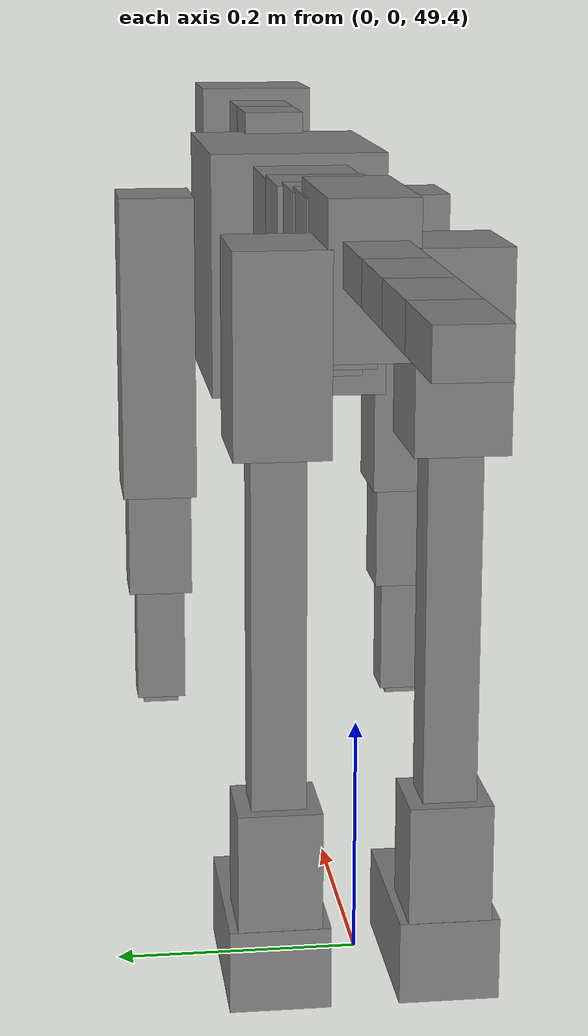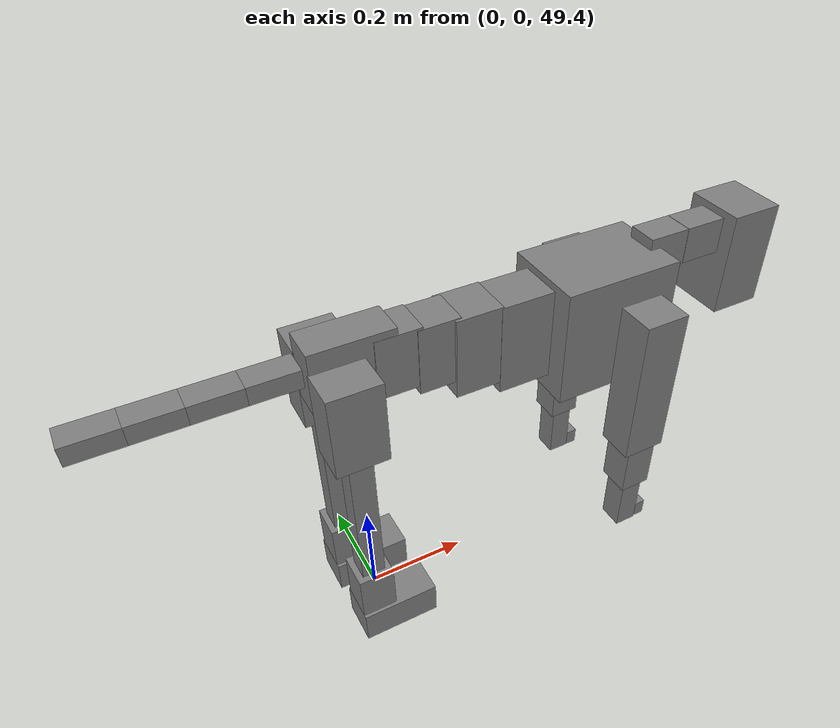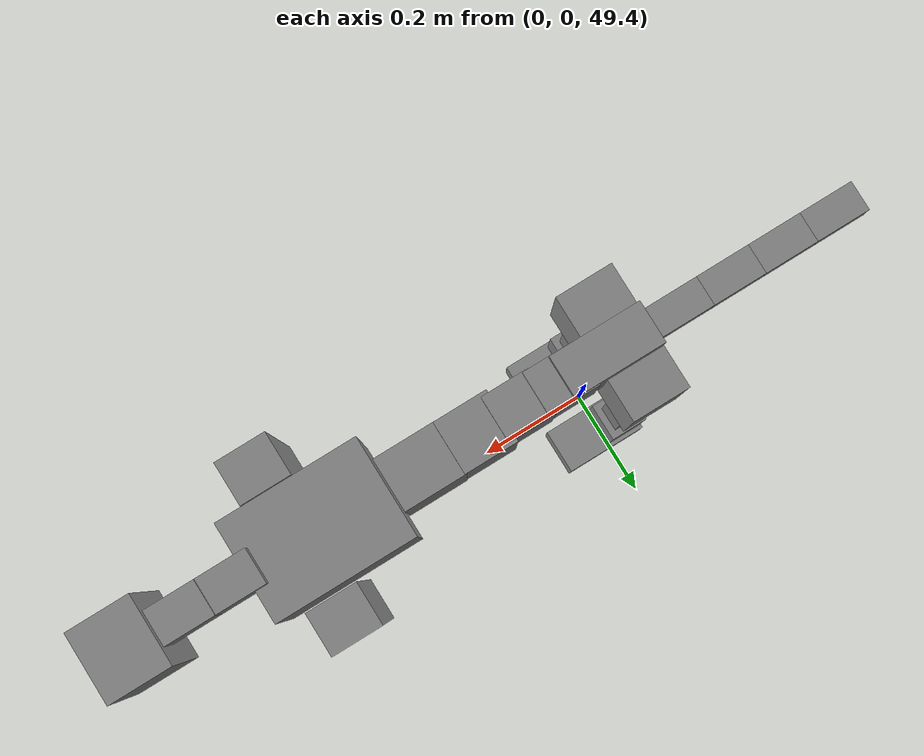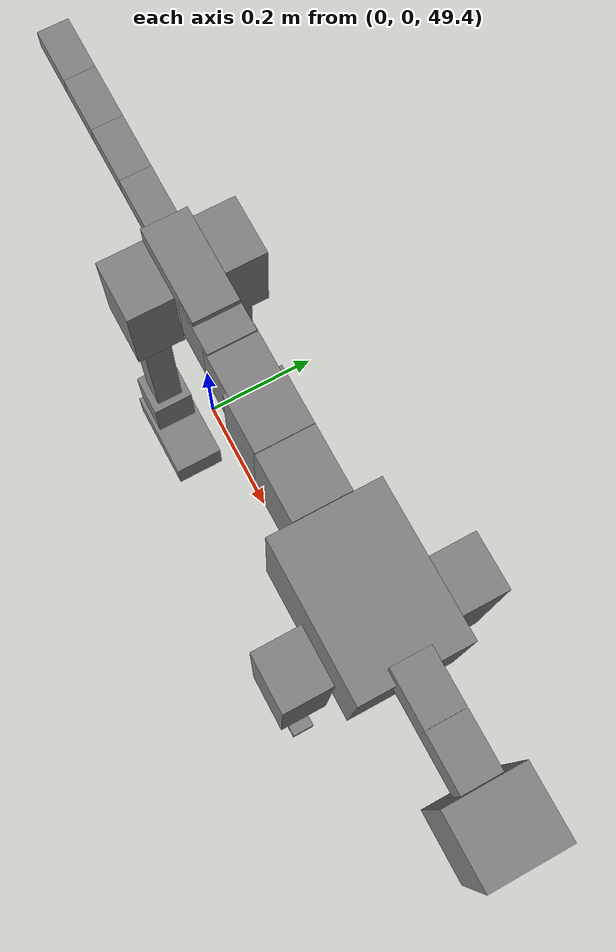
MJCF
<mujoco model="dog">

    <default>
        <joint armature="0.02" stiffness="1" damping="0.2" limited="true"/>
        <geom condim="3" friction="1 0.05 0.05" margin="0.01"/>
        <motor ctrllimited="true" ctrlrange="-1.0 1.0" forcelimited="true" gear="50"/>
    </default>

    <compiler inertiafromgeom="true" angle="radian"/>

    <option timestep="0.016" iterations="50" tolerance="1e-10" solver="Newton" jacobian="dense" cone="pyramidal"/>

    <size nconmax="20000" njmax="60000" nstack="5000000"/>
    <visual>
        <map force="0.1" zfar="30"/>
        <rgba haze="0.15 0.25 0.35 1"/>
        <quality shadowsize="2048"/>
        <global offwidth="800" offheight="800"/>
    </visual>

    <asset>
        <texture type="skybox" builtin="gradient" rgb1="0.3 0.5 0.7" rgb2="0 0 0" width="512" height="512"/>
        <texture name="texplane" type="2d" builtin="checker" rgb1=".2 .3 .4" rgb2=".1 0.15 0.2" width="512" height="512"
                 mark="cross" markrgb=".8 .8 .8"/>
        <texture name="texgeom" type="cube" builtin="flat" mark="cross" width="127" height="1278" rgb1="0.8 0.6 0.4"
                 rgb2="0.8 0.6 0.4" markrgb="1 1 1" random="0.01"/>

        <material name="matplane" reflectance="0.3" texture="texplane" texrepeat="1 1" texuniform="true"/>
        <material name="matgeom" texture="texgeom" texuniform="true" rgba="0.8 0.6 .4 1"/>
    </asset>

    <worldbody>
        <geom name="floor" pos="0 0 0" size="0 0 .25" type="plane" material="matplane" condim="3"/>

        <light directional="false" diffuse=".2 .2 .2" specular="0 0 0" pos="0 0 5" dir="0 0 -1" castshadow="false"/>
        <light mode="targetbodycom" target="torso" directional="false" diffuse=".8 .8 .8" specular="0.3 0.3 0.3"
               pos="0 0 4.0" dir="0 0 -1"/>

        <body name="root" pos="0 0 50">
            <freejoint name="root_1"/>
            <geom type="box" pos="0 0 -0.02" size="0.0774  0.0358  0.063" density="2030"/>

            <body name="spine1" pos="0.054 0 0">
                <joint name="spine1_y" axis="0 1 0" range="0 0.7" limited="true"/>
                <geom type="box" pos="0.02375 0 -0.03" size="0.04375  0.0375  0.05985" density="2030"/>

                <body name="spine2" pos="0.0612 0 0">
                    <joint name="spine2_y" axis="0 1 0" range="-0.15 0.15" limited="true"/>
                    <geom type="box" pos="0.03555  0  -0.04" size="0.04055  0.039  0.06615" density="2030"/>

                    <body name="spine3" pos="0.0730 0 0">
                        <joint name="spine3_y" axis="0 1 0" range="-0.15 0.15" limited="true"/>
                        <geom type="box" pos="0.03555  0  -0.057" size="0.04555  0.0445  0.081" density="2030"/>

                        <body name="spine4" pos="0.0780 0 0">
                            <joint name="spine4_y" axis="0 1 0" range="-0.15 0.15" limited="true"/>
                            <geom type="box" pos="0.05265  0  -0.07" size="0.05265  0.045  0.09135" density="2030"/>

                            <body name="torso" pos="0.1082 0 0">
                                <joint name="torso_y" axis="0 1 0" range="-0.15 0.15" limited="true"/>
                                <geom type="box" pos="0.11925  0  -0.085" size="0.11925  0.085  0.11745"
                                      density="2030"/>

                                <body name="neck1" pos="0.2160  0   0.0180">
                                    <joint name="neck1_y" axis="0 1 0" range="-1.2  -1" limited="true"/>
                                    <geom type="box" pos="0.0423  0  0" size="0.0423  0.03  0.036" density="2325"/>

                                    <body name="neck2" pos="0.0853  0  0">
                                        <joint name="neck2_y" axis="0 1 0" range="0.1  0" limited="true"/>
                                        <geom type="box" pos="0.0423  0  0" size="0.0423  0.03  0.036" density="2325"/>

                                        <body name="head" pos="0.0853  0  0">
                                            <joint name="head_y" axis="0 1 0" range="-0.3  -0.2" limited="true"/>
                                            <geom type="box" pos="0.0531  0  -0.055" size="0.0531  0.06  0.1044"
                                                  density="4030"/>

                                        </body>
                                    </body>
                                </body>

                                <body name="front_shoulder" pos="0.156  0   -0.0480">
                                    <joint name="front_shoulder_y" axis="0 1 0" range="-1 1.5" limited="true"/>
                                    <geom type="box" pos="0 0.13 -0.1277" size="0.0441  0.0377  0.1544" density="1158"/>
                                    <geom type="box" pos="0 -0.13 -0.1277" size="0.0441  0.0377  0.1544"
                                          density="1158"/>

                                    <body name="front_elbow" pos="0  0  -0.2555">
                                        <joint name="front_elbow_y" axis="0 1 0" range="-2 0" limited="true"/>
                                        <geom type="box" pos="0 0.13 -0.0663" size="0.0318  0.0325  0.0663"
                                              density="1081"/>
                                        <geom type="box" pos="0 -0.13 -0.0663" size="0.0318  0.0325  0.0663"
                                              density="1081"/>

                                        <body name="front_wrist" pos="0  0  -0.1326">
                                            <joint name="front_wrist_y" axis="0 1 0" range="-0.2 0" limited="true"/>
                                            <geom type="box" pos="0 0.13 -0.0520" size="0.0225  0.0250  0.0652"
                                                  density="1664"/>
                                            <geom type="box" pos="0 -0.13 -0.0520" size="0.0225  0.0250  0.0652"
                                                  density="1664"/>

                                            <body name="front_finger_end" pos="0  0  -0.1040">
                                                <joint name="front_finger_y" axis="0 1 0" range="-0.4 1"
                                                       limited="true"/>
                                                <geom type="box" pos="0.0184  0.13  -0.0027"
                                                      size="0.0338  0.0184  0.0177" density="1515"/>
                                                <geom type="box" pos="0.0184  -0.13  -0.0027"
                                                      size="0.0338  0.0184  0.0177" density="1515"/>

                                            </body>

                                        </body>
                                    </body>
                                </body>

                            </body>
                        </body>
                    </body>
                </body>
            </body>

            <body name="back_hip" pos="-0.03 0 -0.018">
                <joint name="back_hip_y" axis="0 1 0" range="-1.5 0.3" limited="true"/>
                <geom type="box" pos="0 0.07 -0.0583" size="0.0488  0.0383  0.0811" density="1154"/>
                <geom type="box" pos="0 -0.07 -0.0583" size="0.0488  0.0383  0.0811" density="1154"/>

                <body name="back_knee" pos="0  0  -0.1166">
                    <joint name="back_knee_y" axis="0 1 0" range="0 2.8" limited="true"/>
                    <geom type="box" pos="0 0.07 -0.1646" size="0.0226  0.0223  0.1802" density="1227"/>
                    <geom type="box" pos="0 -0.07 -0.1646" size="0.0226  0.0223  0.1802" density="1227"/>

                    <body name="back_ankle" pos="0  0  -0.3292">
                        <joint name="back_ankle_y" axis="0 1 0" range="-2.2 0" limited="true"/>
                        <geom type="box" pos="0 0.07 -0.0519" size="0.0346  0.0346  0.0631" density="1284"/>
                        <geom type="box" pos="0 -0.07 -0.0519" size="0.0346  0.0346  0.0631" density="1284"/>

                        <body name="back_toe_end" pos="0  0  -0.1038">
                            <joint name="back_toe_y" axis="0 1 0" range="-0.4 1" limited="true"/>
                            <geom type="box" pos="0.0417  0.07  -0.0200" size="0.0765  0.0417  0.0350" density="1515"/>
                            <geom type="box" pos="0.0417  -0.07  -0.0200" size="0.0765  0.0417  0.0350" density="1515"/>

                        </body>
                    </body>
                </body>
            </body>

            <body name="tail1" pos="-0.074 0 -0.006">
                <joint name="tail1_y" axis="0 1 0" range="-0.2 0.2" limited="true"/>
                <geom type="box" pos="-0.0536  0  0" size="0.045  0.025  0.0175" density="1587"/>

                <body name="tail2" pos="-0.09 0 0">
                    <joint name="tail2_y" axis="0 1 0" range="-0.2 0.2" limited="true"/>
                    <geom type="box" pos="-0.0536  0  0" size="0.045  0.025  0.0175" density="1587"/>

                    <body name="tail3" pos="-0.09 0 0">
                        <joint name="tail3_y" axis="0 1 0" range="-0.2 0.2" limited="true"/>
                        <geom type="box" pos="-0.0536  0  0" size="0.045  0.025  0.0175" density="1587"/>

                        <body name="tail4" pos="-0.09 0 0">
                            <joint name="tail4_y" axis="0 1 0" range="-0.2 0.2" limited="true"/>
                            <geom type="box" pos="-0.0536  0  0" size="0.045  0.025  0.0175" density="1587"/>

                        </body>
                    </body>
                </body>
            </body>
        </body>
    </worldbody>

    <actuator>
        <motor joint="spine1_y" forcerange="-150 150     "/>
        <motor joint="spine2_y" forcerange="-150 150     "/>
        <motor joint="spine3_y" forcerange="-150 150     "/>
        <motor joint="spine4_y" forcerange="-150 150     "/>
        <motor joint="torso_y" forcerange="-150 150     "/>
        <motor joint="neck1_y" forcerange="-100 100       "/>
        <motor joint="neck2_y" forcerange="-100 100       "/>
        <motor joint="head_y" forcerange="-150 150       "/>
        <motor joint="front_shoulder_y" forcerange="-169.47 182.00"/>
        <motor joint="front_elbow_y" forcerange="-163.25 173.39"/>
        <motor joint="front_wrist_y" forcerange="-80.53 119.49"/>
        <motor joint="front_finger_y" forcerange="-28.36 29.97"/>
        <motor joint="back_hip_y" forcerange="-315.33 395.21"/>
        <motor joint="back_knee_y" forcerange="-244.17 279.56"/>
        <motor joint="back_angle_y" forcerange="-245.97 207.94"/>
        <motor joint="back_toe_y" forcerange="-118.75 135.09"/>
        <motor joint="tail1_y" forcerange="-50 50     "/>
        <motor joint="tail2_y" forcerange="-50 50     "/>
        <motor joint="tail3_y" forcerange="-50 50     "/>
        <motor joint="tail4_y" forcerange="-50 50     "/>
    </actuator>
</mujoco>
